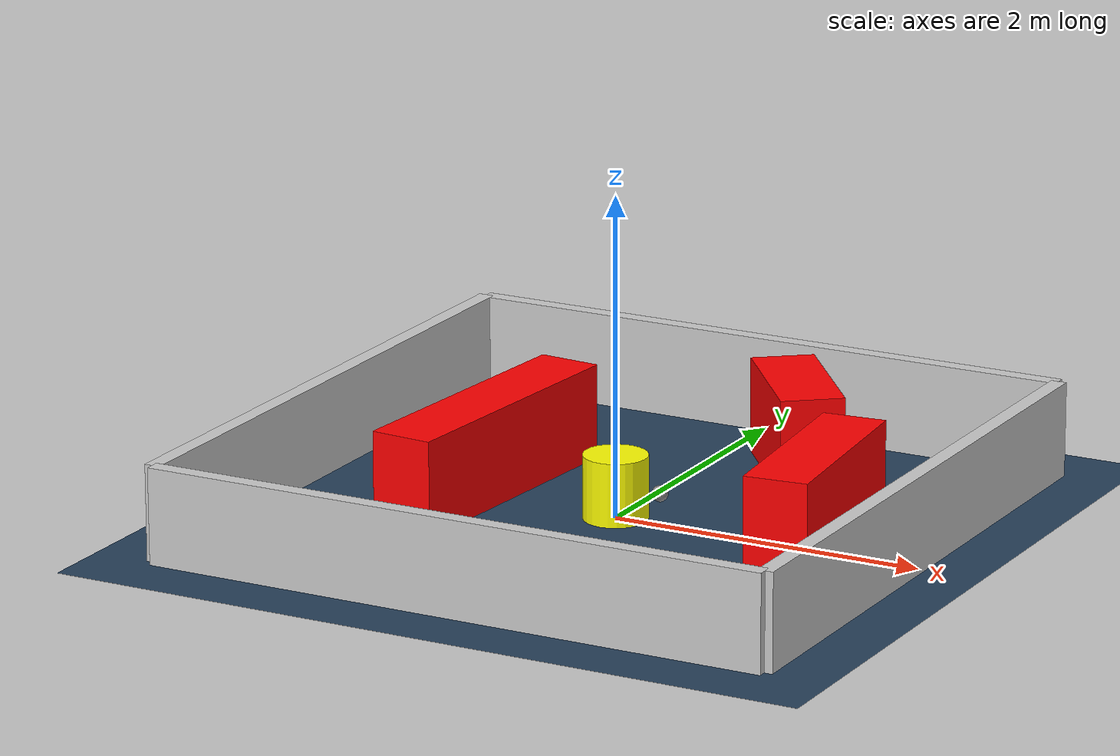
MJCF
<?xml version="1.0" ?>
<mujoco model="generated_environment">
  <option timestep="0.01" integrator="RK4" cone="elliptic"/>
  <default>
    <geom density="1"/>
  </default>
  <asset>
    <texture builtin="gradient" height="3072" rgb1="0.3 0.5 0.7" rgb2="0 0 0" type="skybox" width="512"/>
    <texture builtin="checker" height="300" mark="edge" markrgb="0.8 0.8 0.8" name="groundplane" rgb1="0.2 0.3 0.4" rgb2="0.1 0.2 0.3" type="2d" width="300"/>
    <material name="groundplane" reflectance="0.2" texrepeat="5 5" texture="groundplane" texuniform="true"/>
    <material name="robot" rgba="0.0 1.0 0.0 1"/>
  </asset>
  <worldbody>
    <light dir="0 0 -1" directional="true" pos="0 0 1.5"/>
    <geom condim="4" friction="1.0 0.005 0.001" material="groundplane" name="floor" size="0 0 0.05" type="plane"/>
    <body name="walls">
      <geom name="wall_1" condim="4" pos="-2.0 0.0 0.3" rgba="0.800000011920929 0.800000011920929 0.800000011920929 1.0" size="0.05 2.0 0.3" type="box"/>
      <geom name="wall_2" condim="4" pos="2.0 0.0 0.3" rgba="0.800000011920929 0.800000011920929 0.800000011920929 1.0" size="0.05 2.0 0.3" type="box"/>
      <geom name="wall_3" condim="4" pos="0.0 -2.0 0.3" rgba="0.800000011920929 0.800000011920929 0.800000011920929 1.0" size="2.0 0.05 0.3" type="box"/>
      <geom name="wall_4" condim="4" pos="0.0 2.0 0.3" rgba="0.800000011920929 0.800000011920929 0.800000011920929 1.0" size="2.0 0.05 0.3" type="box"/>
    </body>
    <body name="robot">
      <joint name="joint_x" type="slide" pos="0 0 0" axis="1 0 0"/>
      <joint name="joint_y" type="slide" pos="0 0 0" axis="0 1 0"/>
      <geom name="robot" type="sphere" pos="0.3 0.0 0.2" size="0.05" mass="5." friction="1.0 0.005 0.0001" condim="4" rgba="0.5 0.5 0.5 1.0"/>
      <site name="sensor_ball"/>
    </body>
    <body name="obstacle_movable_1">
      <geom name="obstacle_movable_1" condim="4" pos="0.0 0.0 0.2" euler="0 0 0.0" friction="1.0 0.005 0.001" rgba="1.0 1.0 0.0 1.0" size="0.2 0.2 0.0" type="cylinder" mass="0.1"/>
      <joint type="free"/>
    </body>
    <body name="obstacle_2_static">
      <geom name="obstacle_2_static" condim="4" pos="0.5574429995176176 1.3207150200026583 0.3" euler="0 0 128.02640532240886" friction="1.0 0.005 0.001" rgba="1 0 0 1" size="0.4599177473596785 0.2 0.3" type="box"/>
    </body>
    <body name="obstacle_3_static">
      <geom name="obstacle_3_static" condim="4" pos="-0.9225418682621972 0.07729738257549168 0.3" euler="0 0 265.5566313021281" friction="1.0 0.005 0.001" rgba="1 0 0 1" size="0.924423139829869 0.2 0.3" type="box"/>
    </body>
    <body name="obstacle_4_static">
      <geom name="obstacle_4_static" condim="4" pos="1.2705928732928784 0.11892091005822514 0.3" euler="0 0 95.43865019698978" friction="1.0 0.005 0.001" rgba="1 0 0 1" size="0.6610880258125678 0.2 0.3" type="box"/>
    </body>
  </worldbody>
  <actuator>
    <motor name="actuator_x" joint="joint_x" gear="1" ctrlrange="-1 1"/>
    <motor name="actuator_y" joint="joint_y" gear="1" ctrlrange="-1 1"/>
  </actuator>
</mujoco>
